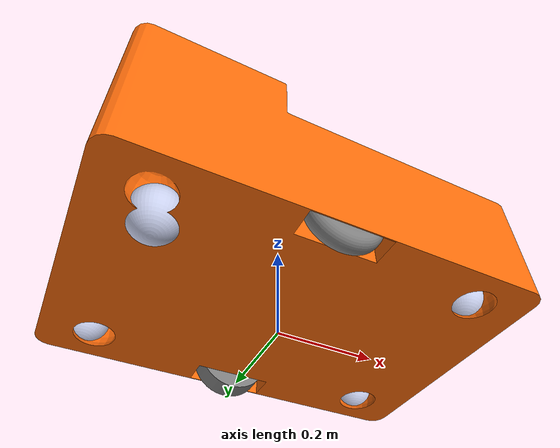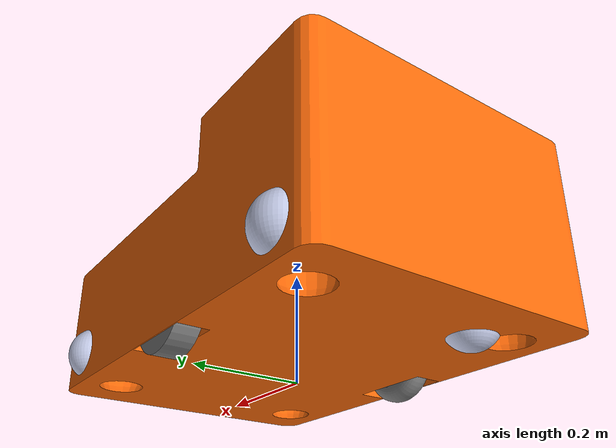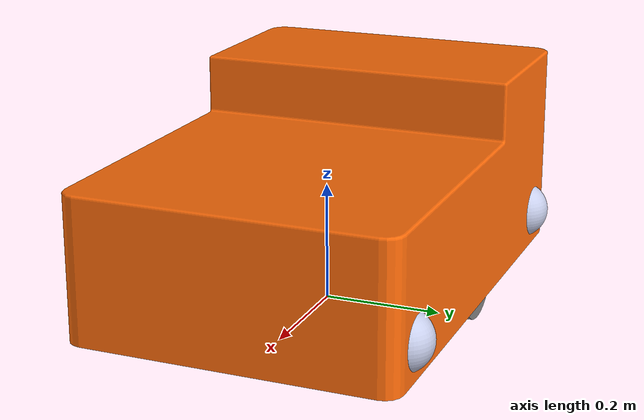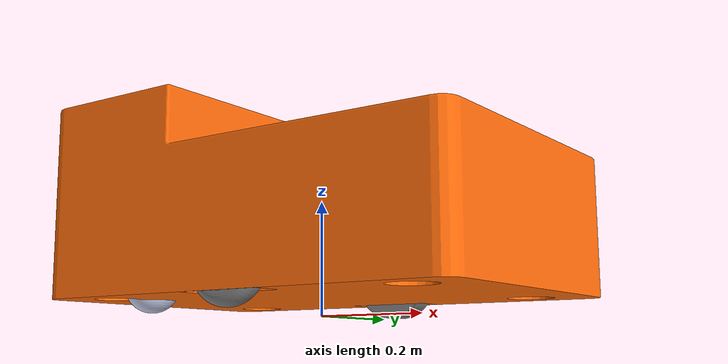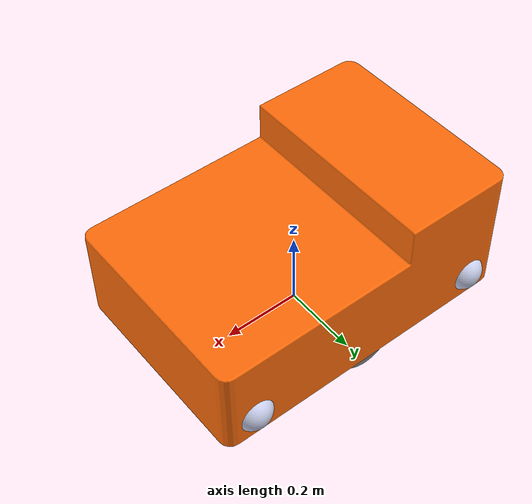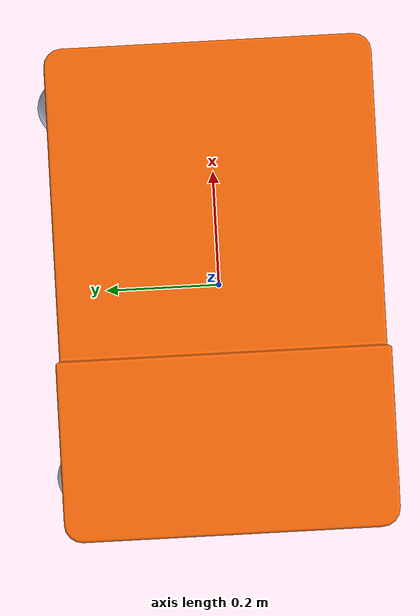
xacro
<?xml version="1.0"?>
<robot name="AGV" xmlns:xacro="http://www.ros.org/wiki/xacro">

	<!--                  ROBOT PARAMETERS        -->
  <!-- Position the wheels along the x-axis -->
  <xacro:property name="wheel_xoff" value="0.0795"/>

  <!-- Position the caster wheel (visual) along the x-axis -->
  <xacro:property name="caster_xoff" value="0.08963"/>

  <!-- Position the caster wheel (collision) along the x-axis -->
  <xacro:property name="caster_collision_xoff" value="0.08963"/>

  <!-- The parameter for wheels setup-->
  <xacro:property name="wheel_dia" value="0.15"/>
  <xacro:property name="wheel_separate" value="0.48826"/>

  <!-- Include the controller plugin for gazebo-->
  <xacro:include filename="robot_controller.xacro" />

  <!-- Define a property for the base path to meshes -->
  <xacro:property name="mesh_base_path" value="package://robot_pkg/"/>

	<!--                 START: GROUND         -->

  <link name="dummy_link">
  </link>
  <joint name="fixed_dummy_base" type="fixed">
    <parent link="dummy_link"/>
    <child link="base_link"/>
    <origin xyz="0 0 0" rpy="0 0 0"/>
  </joint>

	<!--                 END: GROUND         -->

	<!--                 START: Base       -->

  <link name="base_link">
    <inertial>
      <origin xyz="0 0 0.1" rpy="1.570796327 0 0" />
      <mass value="14.2430877452663" />
      <inertia ixx="0.490511050948444" ixy="0" ixz="0" iyy="1.36650045731287" iyz="0" izz="0.971942301144948" />
    </inertial>
    <visual>
      <origin xyz="0 0 0.03" rpy="0 0 0" />
      <geometry>
        <mesh filename="${mesh_base_path}/meshes/base_link.stl" />
      </geometry>
      <material name="orange">
        <color rgba="1.0 0.423529411765 0.0392156862745 1.0"/>
      </material>
    </visual>
    <collision>
      <origin xyz ="0 0 0.03" rpy = "0 0 3.141592654" />
      <geometry>
        <mesh filename="${mesh_base_path}/meshes/base_link_collision.stl" />
      </geometry>
    </collision>
  </link>

	<!--                 END: Base         -->

 <!--                 START: Right wheel          -->

  <link name="Right_wheel">
    <inertial>
      <origin xyz="0 0 0" rpy="-1.570796327 0 0" />
      <mass value="0.49011" />
      <inertia ixx="0.00083492" ixy="0" ixz="0" iyy="0.001562" iyz="0" izz="0.00083497" />
    </inertial>
    <visual>
      <origin xyz="0 0.0225 0" rpy="3.141592654 0 0" />
      <geometry>
        <mesh filename="${mesh_base_path}/meshes/Right_wheel.stl" />
      </geometry>
      <material name="gray">
        <color rgba="0.5 0.5 0.5 1.0"/>
      </material>
    </visual>
    <collision>
      <origin xyz="0 0.0225 0" rpy="-1.570796327 0 0" />
      <geometry>
        <mesh filename="${mesh_base_path}/meshes/wheel_collision.stl" />
      </geometry>
    </collision>
  </link>

  <joint name="RWheel_joint" type="continuous">
    <origin xyz="0 -0.24413 ${wheel_xoff}" rpy="0 0 0" />
    <parent link="base_link" />
    <child link="Right_wheel" />
    <axis xyz="0 1 0" />
    <limit effort="1000" velocity="1000" />
	  <dynamics damping="1.0" friction="1.0"/>
  </joint>

	<!--                 END: Right wheel          -->

	<!--                 START: Left wheel         -->

  <link name="Left_wheel">
    <inertial>
      <origin xyz="0 0 0" rpy="-1.570796327 0 0" />
      <mass value="0.49011" />
      <inertia ixx="0.00083492" ixy="0" ixz="0" iyy="0.001562" iyz="0" izz="0.00083497" />
    </inertial>
    <visual>
      <origin xyz="0 0.0225 0" rpy="3.141592654 0 0" />
      <geometry>
        <mesh filename="${mesh_base_path}/meshes/Left_wheel.stl" />
      </geometry>
      <material name="gray">
        <color rgba="0.5 0.5 0.5 1.0"/>
      </material>
    </visual>
    <collision>
      <origin xyz="0 0.0225 0" rpy="-1.570796327 0 0" />
      <geometry>
        <mesh filename="${mesh_base_path}/meshes/wheel_collision.stl" />
      </geometry>
    </collision>
  </link>

  <joint name="LWheel_joint" type="continuous">
    <origin xyz="0 0.24413 ${wheel_xoff}" rpy="0 0 0" />
    <parent link="base_link" />
    <child link="Left_wheel" />
    <axis xyz="0 1 0" />
    <limit effort="1000" velocity="1000" />
	  <dynamics damping="1.0" friction="1.0"/>
  </joint>

	<!--                 END: Caster wheel          -->

	<!--                 START: Caster wheel          -->
  <link name="FR_Caster">
    <inertial>
      <origin xyz="0 0 0" rpy="1.570796327 0 0" />
      <mass value="0.18385" />
      <inertia ixx="0.00019043" ixy="0" ixz="0" iyy="0.00013092" iyz="0" izz="0.00021915" />
    </inertial>
    <visual>
      <origin xyz="0 0 0" rpy="1.570796327 0 0" />
      <geometry>
        <mesh filename="${mesh_base_path}/meshes/FR_Caster.stl" />
      </geometry>
      <material name="">
        <color rgba="0.79216 0.81961 0.93333 1" />
      </material>
    </visual>
    <collision>
      <origin xyz="0 0 0" rpy="1.570796327  0 0" />
      <geometry>
        <mesh filename="${mesh_base_path}/meshes/FR_Caster.stl" />
      </geometry>
    </collision>
  </link>

  <joint name="FRC_joint" type="fixed">
    <origin xyz="0.32 -0.1975 ${caster_collision_xoff}" rpy="0 0 0" />
    <parent link="base_link" />
    <child link="FR_Caster" />
    <axis xyz="0 0 0" />
  </joint>

  <link name="FL_Caster">
    <inertial>
      <origin xyz="0 0 0" rpy="1.570796327 0 0" />
      <mass value="0.18385" />
      <inertia ixx="0.00019043" ixy="0" ixz="0" iyy="0.00013092" iyz="0" izz="0.00021915" />
    </inertial>
    <visual>
      <origin xyz="0 0 0" rpy="1.570796327 0 0" />
      <geometry>
        <mesh filename="${mesh_base_path}/meshes/FL_Caster.stl" />
      </geometry>
      <material name="">
        <color rgba="0.79216 0.81961 0.93333 1" />
      </material>
    </visual>
    <collision>
      <origin xyz="0 0 0" rpy="1.570796327 0 0" />
      <geometry>
        <mesh filename="${mesh_base_path}/meshes/FL_Caster.stl" />
      </geometry>
    </collision>
  </link>

  <joint name="FLC_joint" type="fixed">
    <origin xyz="0.32 0.1975 ${caster_collision_xoff}" rpy="0 0 0" />
    <parent link="base_link" />
    <child link="FL_Caster" />
    <axis xyz="0 0 0" />
  </joint>

  <link name="RR_Caster">
    <inertial>
      <origin xyz="0 0 0" rpy="1.570796327 0 0" />
      <mass value="0.18385" />
      <inertia ixx="0.00019043" ixy="0" ixz="0" iyy="0.00013092" iyz="0" izz="0.00021915" />
    </inertial>
    <visual>
      <origin xyz="0 0 0" rpy="1.570796327 0 0" />
      <geometry>
        <mesh filename="${mesh_base_path}/meshes/RR_Caster.stl" />
      </geometry>
      <material name="">
        <color rgba="0.79216 0.81961 0.93333 1" />
      </material>
    </visual>
    <collision>
      <origin xyz="0 0 0" rpy="1.570796327 0 0" />
      <geometry>
        <mesh filename="${mesh_base_path}/meshes/RR_Caster.stl" />
      </geometry>
    </collision>
  </link>

  <joint name="RRC_joint" type="fixed">
    <origin xyz="-0.32 -0.1975 ${caster_collision_xoff}" rpy="0 0 0" />
    <parent link="base_link" />
    <child link="RR_Caster" />
    <axis xyz="0 0 0" />
  </joint>

  <link name="RL_Caster">
    <inertial>
      <origin xyz="-0.0033782 -0.032481 -1.3245E-09" rpy="0 0 0" />
      <mass value="0.18385" />
      <inertia ixx="0.00019043" ixy="0" ixz="0" iyy="0.00013092" iyz="0" izz="0.00021915" />
    </inertial>
    <visual>
      <origin xyz="0 0 0" rpy="1.570796327 0 0" />
      <geometry>
        <mesh filename="${mesh_base_path}/meshes/RL_Caster.stl" />
      </geometry>
      <material name="">
        <color rgba="0.79216 0.81961 0.93333 1" />
      </material>
    </visual>
    <collision>
      <origin xyz="0 0 0" rpy="1.570796327 0 0" />
      <geometry>
        <mesh filename="${mesh_base_path}/meshes/RL_Caster.stl" />
      </geometry>
    </collision>
  </link>

  <joint name="RLC_joint" type="fixed">
    <origin xyz="-0.32 0.1975 ${caster_collision_xoff}" rpy="0 0 0" />
    <parent link="base_link" />
    <child link="RL_Caster" />
    <axis xyz="0 0 0" />
  </joint>
<!--                 END: Caster wheel          -->

</robot>
